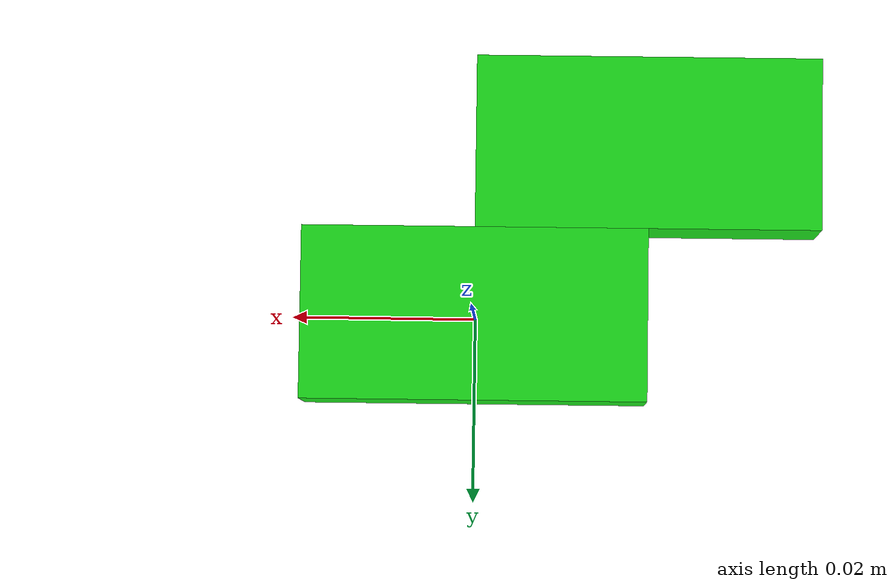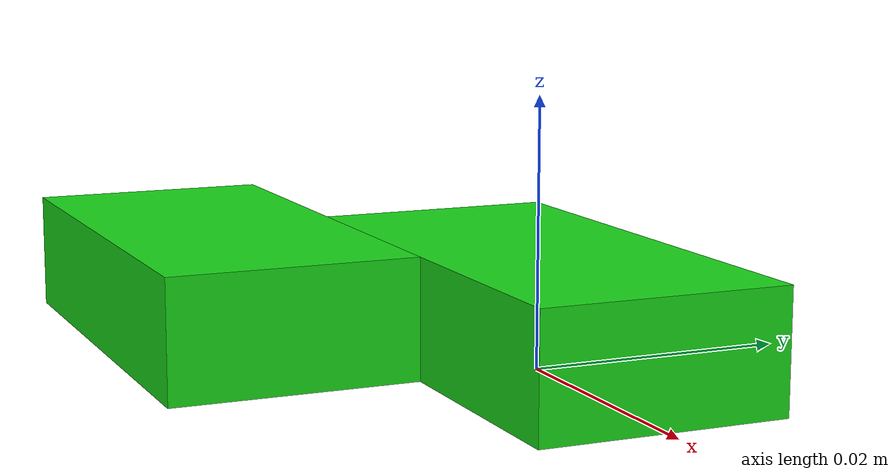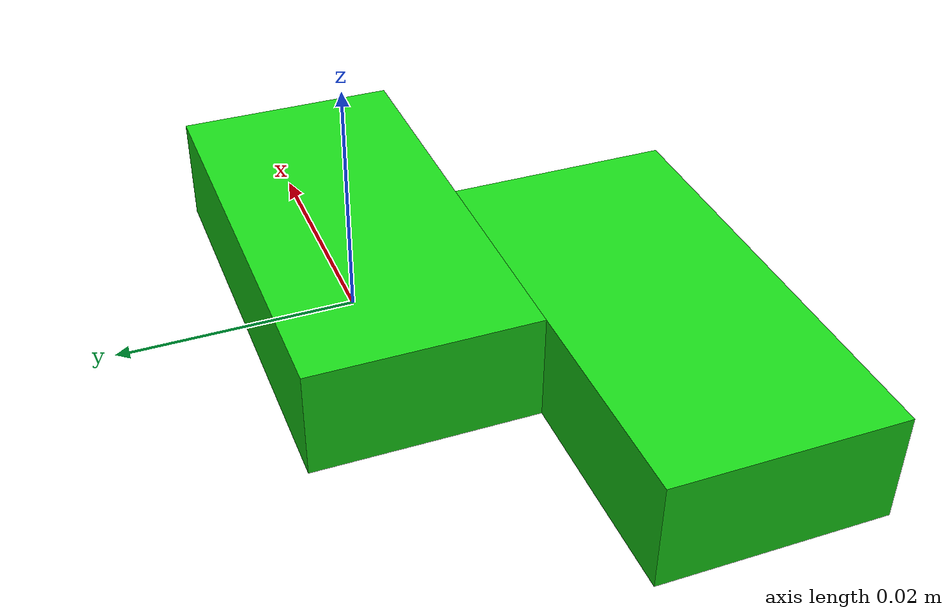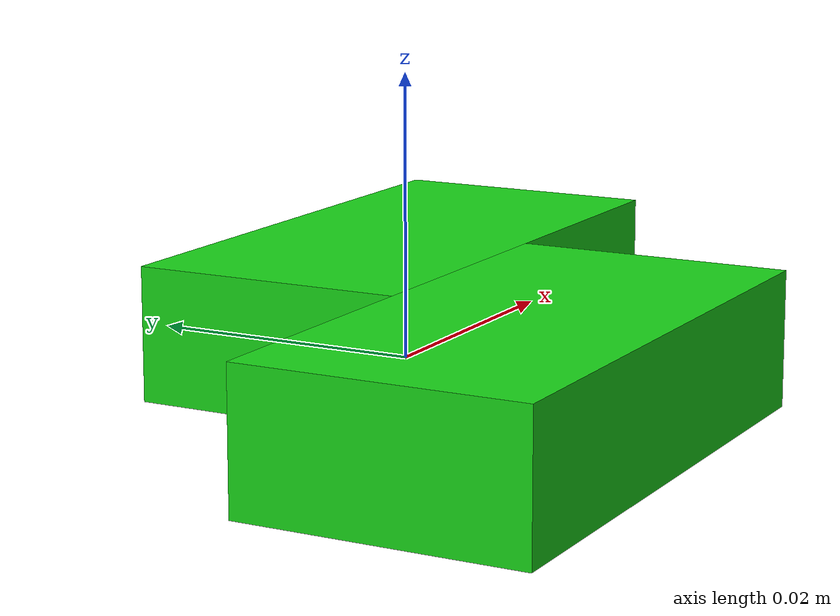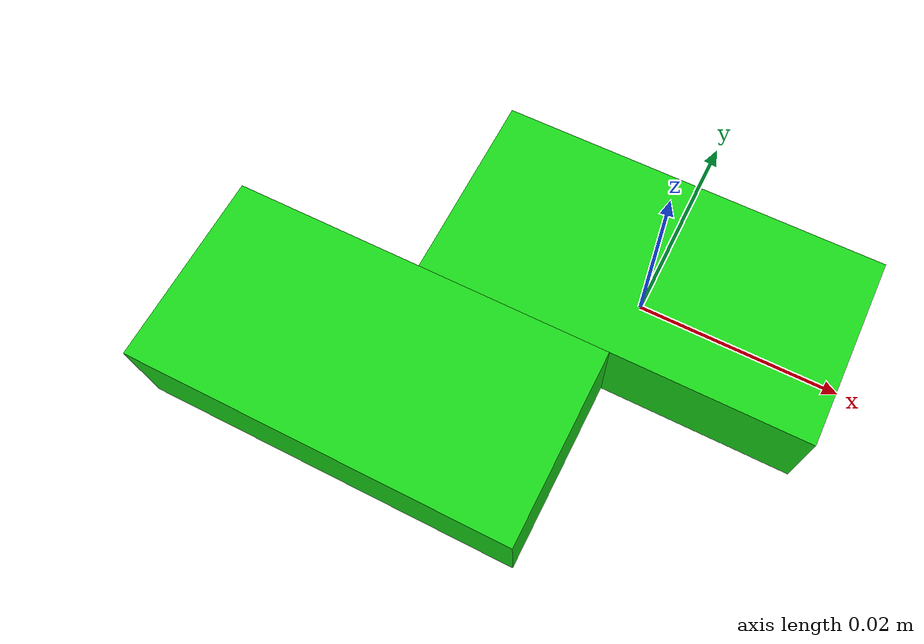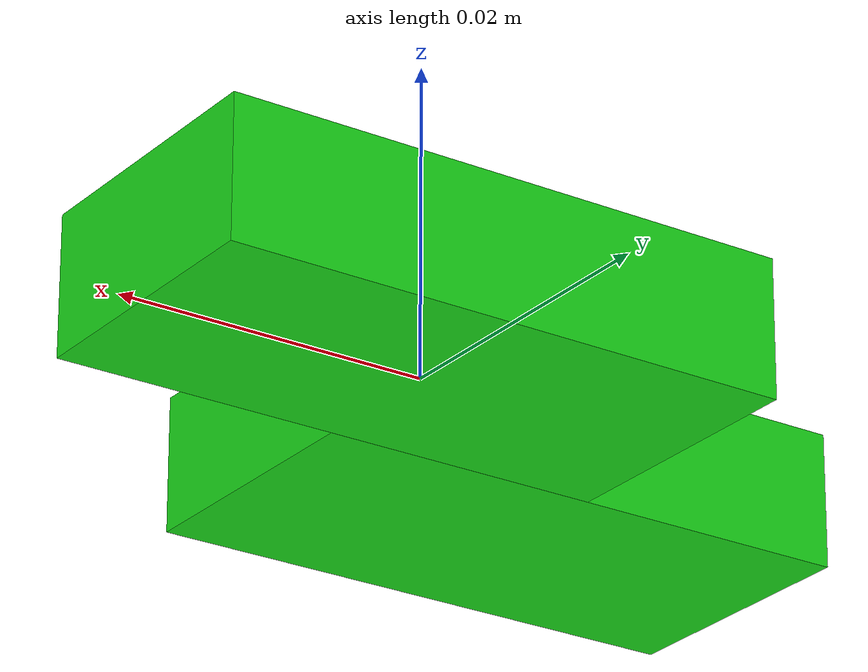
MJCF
<mujoco>
  <compiler angle="radian" autolimits="true"/>
  <worldbody>
    <geom type="box" size="0.0185 0.00925 0.0045" pos="0 0 0.0045" rgba="0.1 0.85 0.1 1" density="1000"/>
    <geom type="box" size="0.0185 0.00925 0.0045" pos="-0.0185 -0.0185 0.0045" rgba="0.1 0.85 0.1 1" density="1000"/>
  </worldbody>
</mujoco>
